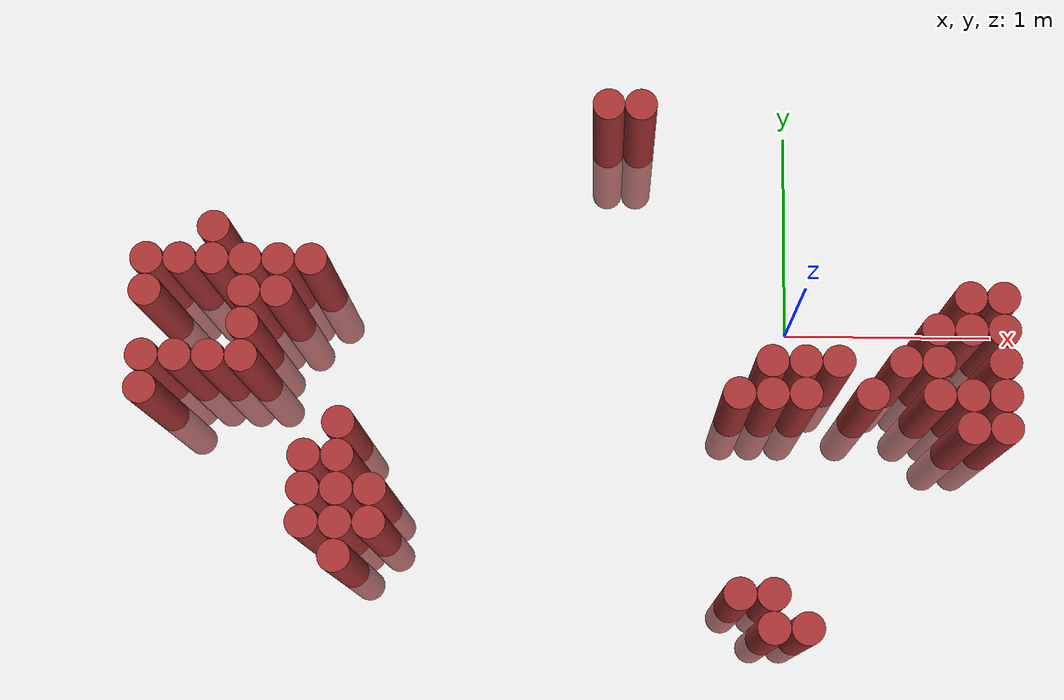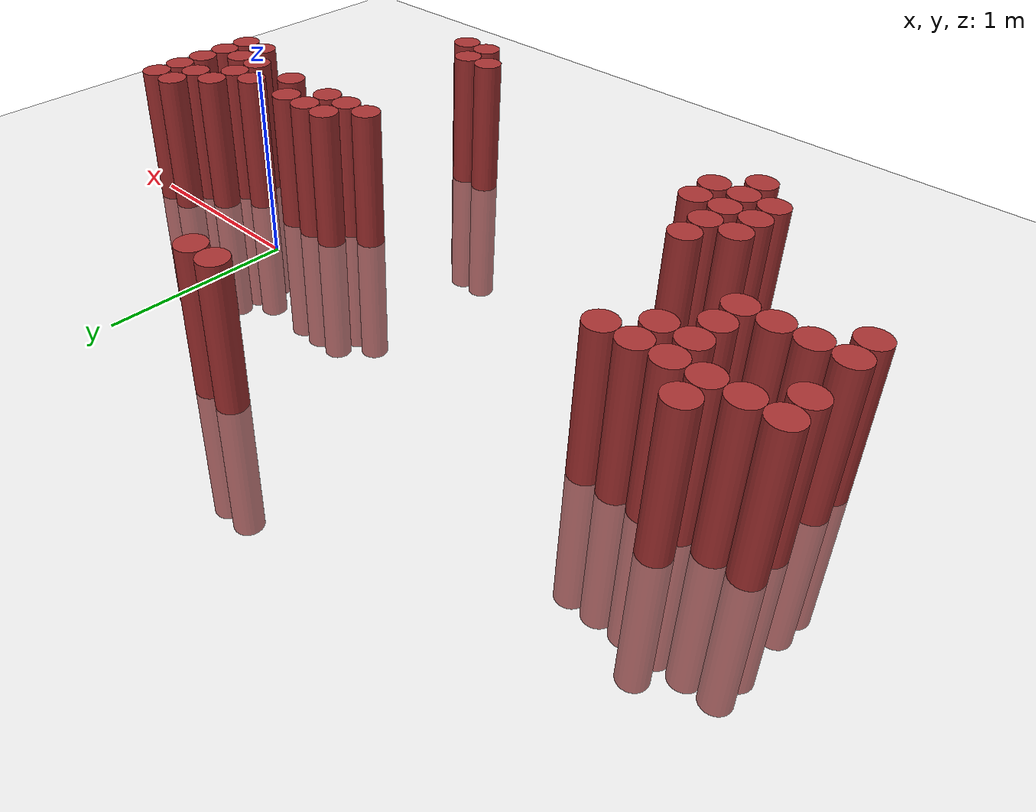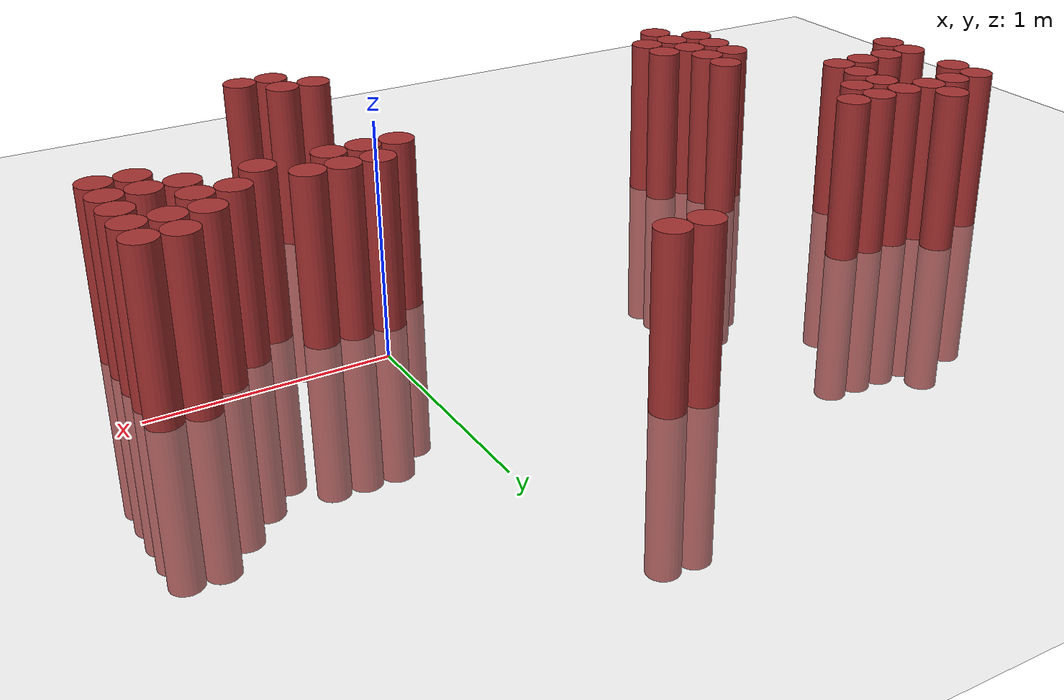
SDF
<sdf version="1.6">
 <world name="default">
  <model name="ground_plane">
   <static>1</static>
   <link name="link">
    <collision name="collision">
     <geometry><plane><normal>0 0 1</normal><size>100 100</size></plane></geometry>
     <surface><friction><ode><mu>100</mu><mu2>50</mu2></ode></friction></surface>
    </collision>
    <visual name="visual">
     <cast_shadows>0</cast_shadows>
     <geometry><plane><normal>0 0 1</normal><size>100 100</size></plane></geometry>
     <material>
      <script><uri>file://media/materials/scripts/gazebo.material</uri><name>Gazebo/Grey</name></script>
     </material>
    </visual>
   </link>
  </model>
  <model name="unit_cylinder_301">
   <static>1</static>
   <pose>-2.975000 -0.425000 0.000000 0.000000 0.000000 0.000000</pose>
   <link name="link">
    <inertial>
     <mass>1</mass>
     <inertia><ixx>0.145833</ixx><ixy>0</ixy><ixz>0</ixz><iyy>0.145833</iyy><iyz>0</iyz><izz>0.125</izz></inertia>
    </inertial>
    <collision name="collision">
     <geometry><cylinder><radius>0.075000</radius><length>1.5</length></cylinder></geometry>
    </collision>
    <visual name="visual">
     <geometry><cylinder><radius>0.075000</radius><length>1.5</length></cylinder></geometry>
     <material>
      <ambient>0.648000 0.192000 0.192000 1</ambient>
      <diffuse>0.648000 0.192000 0.192000 1</diffuse>
     </material>
     <material>
      <script><name>Gazebo/Grey</name><uri>file://media/materials/scripts/gazebo.material</uri></script>
     </material>
    </visual>
   </link>
  </model>
  <model name="unit_cylinder_302">
   <static>1</static>
   <pose>-2.975000 -0.275000 0.000000 0.000000 0.000000 0.000000</pose>
   <link name="link">
    <inertial>
     <mass>1</mass>
     <inertia><ixx>0.145833</ixx><ixy>0</ixy><ixz>0</ixz><iyy>0.145833</iyy><iyz>0</iyz><izz>0.125</izz></inertia>
    </inertial>
    <collision name="collision">
     <geometry><cylinder><radius>0.075000</radius><length>1.5</length></cylinder></geometry>
    </collision>
    <visual name="visual">
     <geometry><cylinder><radius>0.075000</radius><length>1.5</length></cylinder></geometry>
     <material>
      <ambient>0.648000 0.192000 0.192000 1</ambient>
      <diffuse>0.648000 0.192000 0.192000 1</diffuse>
     </material>
     <material>
      <script><name>Gazebo/Grey</name><uri>file://media/materials/scripts/gazebo.material</uri></script>
     </material>
    </visual>
   </link>
  </model>
  <model name="unit_cylinder_303">
   <static>1</static>
   <pose>-2.975000 0.025000 0.000000 0.000000 0.000000 0.000000</pose>
   <link name="link">
    <inertial>
     <mass>1</mass>
     <inertia><ixx>0.145833</ixx><ixy>0</ixy><ixz>0</ixz><iyy>0.145833</iyy><iyz>0</iyz><izz>0.125</izz></inertia>
    </inertial>
    <collision name="collision">
     <geometry><cylinder><radius>0.075000</radius><length>1.5</length></cylinder></geometry>
    </collision>
    <visual name="visual">
     <geometry><cylinder><radius>0.075000</radius><length>1.5</length></cylinder></geometry>
     <material>
      <ambient>0.648000 0.192000 0.192000 1</ambient>
      <diffuse>0.648000 0.192000 0.192000 1</diffuse>
     </material>
     <material>
      <script><name>Gazebo/Grey</name><uri>file://media/materials/scripts/gazebo.material</uri></script>
     </material>
    </visual>
   </link>
  </model>
  <model name="unit_cylinder_304">
   <static>1</static>
   <pose>-2.975000 0.175000 0.000000 0.000000 0.000000 0.000000</pose>
   <link name="link">
    <inertial>
     <mass>1</mass>
     <inertia><ixx>0.145833</ixx><ixy>0</ixy><ixz>0</ixz><iyy>0.145833</iyy><iyz>0</iyz><izz>0.125</izz></inertia>
    </inertial>
    <collision name="collision">
     <geometry><cylinder><radius>0.075000</radius><length>1.5</length></cylinder></geometry>
    </collision>
    <visual name="visual">
     <geometry><cylinder><radius>0.075000</radius><length>1.5</length></cylinder></geometry>
     <material>
      <ambient>0.648000 0.192000 0.192000 1</ambient>
      <diffuse>0.648000 0.192000 0.192000 1</diffuse>
     </material>
     <material>
      <script><name>Gazebo/Grey</name><uri>file://media/materials/scripts/gazebo.material</uri></script>
     </material>
    </visual>
   </link>
  </model>
  <model name="unit_cylinder_312">
   <static>1</static>
   <pose>-2.825000 -0.275000 0.000000 0.000000 0.000000 0.000000</pose>
   <link name="link">
    <inertial>
     <mass>1</mass>
     <inertia><ixx>0.145833</ixx><ixy>0</ixy><ixz>0</ixz><iyy>0.145833</iyy><iyz>0</iyz><izz>0.125</izz></inertia>
    </inertial>
    <collision name="collision">
     <geometry><cylinder><radius>0.075000</radius><length>1.5</length></cylinder></geometry>
    </collision>
    <visual name="visual">
     <geometry><cylinder><radius>0.075000</radius><length>1.5</length></cylinder></geometry>
     <material>
      <ambient>0.648000 0.192000 0.192000 1</ambient>
      <diffuse>0.648000 0.192000 0.192000 1</diffuse>
     </material>
     <material>
      <script><name>Gazebo/Grey</name><uri>file://media/materials/scripts/gazebo.material</uri></script>
     </material>
    </visual>
   </link>
  </model>
  <model name="unit_cylinder_313">
   <static>1</static>
   <pose>-2.825000 0.175000 0.000000 0.000000 0.000000 0.000000</pose>
   <link name="link">
    <inertial>
     <mass>1</mass>
     <inertia><ixx>0.145833</ixx><ixy>0</ixy><ixz>0</ixz><iyy>0.145833</iyy><iyz>0</iyz><izz>0.125</izz></inertia>
    </inertial>
    <collision name="collision">
     <geometry><cylinder><radius>0.075000</radius><length>1.5</length></cylinder></geometry>
    </collision>
    <visual name="visual">
     <geometry><cylinder><radius>0.075000</radius><length>1.5</length></cylinder></geometry>
     <material>
      <ambient>0.648000 0.192000 0.192000 1</ambient>
      <diffuse>0.648000 0.192000 0.192000 1</diffuse>
     </material>
     <material>
      <script><name>Gazebo/Grey</name><uri>file://media/materials/scripts/gazebo.material</uri></script>
     </material>
    </visual>
   </link>
  </model>
  <model name="unit_cylinder_317">
   <static>1</static>
   <pose>-2.675000 -0.275000 0.000000 0.000000 0.000000 0.000000</pose>
   <link name="link">
    <inertial>
     <mass>1</mass>
     <inertia><ixx>0.145833</ixx><ixy>0</ixy><ixz>0</ixz><iyy>0.145833</iyy><iyz>0</iyz><izz>0.125</izz></inertia>
    </inertial>
    <collision name="collision">
     <geometry><cylinder><radius>0.075000</radius><length>1.5</length></cylinder></geometry>
    </collision>
    <visual name="visual">
     <geometry><cylinder><radius>0.075000</radius><length>1.5</length></cylinder></geometry>
     <material>
      <ambient>0.648000 0.192000 0.192000 1</ambient>
      <diffuse>0.648000 0.192000 0.192000 1</diffuse>
     </material>
     <material>
      <script><name>Gazebo/Grey</name><uri>file://media/materials/scripts/gazebo.material</uri></script>
     </material>
    </visual>
   </link>
  </model>
  <model name="unit_cylinder_318">
   <static>1</static>
   <pose>-2.675000 0.175000 0.000000 0.000000 0.000000 0.000000</pose>
   <link name="link">
    <inertial>
     <mass>1</mass>
     <inertia><ixx>0.145833</ixx><ixy>0</ixy><ixz>0</ixz><iyy>0.145833</iyy><iyz>0</iyz><izz>0.125</izz></inertia>
    </inertial>
    <collision name="collision">
     <geometry><cylinder><radius>0.075000</radius><length>1.5</length></cylinder></geometry>
    </collision>
    <visual name="visual">
     <geometry><cylinder><radius>0.075000</radius><length>1.5</length></cylinder></geometry>
     <material>
      <ambient>0.648000 0.192000 0.192000 1</ambient>
      <diffuse>0.648000 0.192000 0.192000 1</diffuse>
     </material>
     <material>
      <script><name>Gazebo/Grey</name><uri>file://media/materials/scripts/gazebo.material</uri></script>
     </material>
    </visual>
   </link>
  </model>
  <model name="unit_cylinder_319">
   <static>1</static>
   <pose>-2.675000 0.325000 0.000000 0.000000 0.000000 0.000000</pose>
   <link name="link">
    <inertial>
     <mass>1</mass>
     <inertia><ixx>0.145833</ixx><ixy>0</ixy><ixz>0</ixz><iyy>0.145833</iyy><iyz>0</iyz><izz>0.125</izz></inertia>
    </inertial>
    <collision name="collision">
     <geometry><cylinder><radius>0.075000</radius><length>1.5</length></cylinder></geometry>
    </collision>
    <visual name="visual">
     <geometry><cylinder><radius>0.075000</radius><length>1.5</length></cylinder></geometry>
     <material>
      <ambient>0.648000 0.192000 0.192000 1</ambient>
      <diffuse>0.648000 0.192000 0.192000 1</diffuse>
     </material>
     <material>
      <script><name>Gazebo/Grey</name><uri>file://media/materials/scripts/gazebo.material</uri></script>
     </material>
    </visual>
   </link>
  </model>
  <model name="unit_cylinder_322">
   <static>1</static>
   <pose>-2.525000 -0.275000 0.000000 0.000000 0.000000 0.000000</pose>
   <link name="link">
    <inertial>
     <mass>1</mass>
     <inertia><ixx>0.145833</ixx><ixy>0</ixy><ixz>0</ixz><iyy>0.145833</iyy><iyz>0</iyz><izz>0.125</izz></inertia>
    </inertial>
    <collision name="collision">
     <geometry><cylinder><radius>0.075000</radius><length>1.5</length></cylinder></geometry>
    </collision>
    <visual name="visual">
     <geometry><cylinder><radius>0.075000</radius><length>1.5</length></cylinder></geometry>
     <material>
      <ambient>0.648000 0.192000 0.192000 1</ambient>
      <diffuse>0.648000 0.192000 0.192000 1</diffuse>
     </material>
     <material>
      <script><name>Gazebo/Grey</name><uri>file://media/materials/scripts/gazebo.material</uri></script>
     </material>
    </visual>
   </link>
  </model>
  <model name="unit_cylinder_323">
   <static>1</static>
   <pose>-2.525000 -0.125000 0.000000 0.000000 0.000000 0.000000</pose>
   <link name="link">
    <inertial>
     <mass>1</mass>
     <inertia><ixx>0.145833</ixx><ixy>0</ixy><ixz>0</ixz><iyy>0.145833</iyy><iyz>0</iyz><izz>0.125</izz></inertia>
    </inertial>
    <collision name="collision">
     <geometry><cylinder><radius>0.075000</radius><length>1.5</length></cylinder></geometry>
    </collision>
    <visual name="visual">
     <geometry><cylinder><radius>0.075000</radius><length>1.5</length></cylinder></geometry>
     <material>
      <ambient>0.648000 0.192000 0.192000 1</ambient>
      <diffuse>0.648000 0.192000 0.192000 1</diffuse>
     </material>
     <material>
      <script><name>Gazebo/Grey</name><uri>file://media/materials/scripts/gazebo.material</uri></script>
     </material>
    </visual>
   </link>
  </model>
  <model name="unit_cylinder_324">
   <static>1</static>
   <pose>-2.525000 0.025000 0.000000 0.000000 0.000000 0.000000</pose>
   <link name="link">
    <inertial>
     <mass>1</mass>
     <inertia><ixx>0.145833</ixx><ixy>0</ixy><ixz>0</ixz><iyy>0.145833</iyy><iyz>0</iyz><izz>0.125</izz></inertia>
    </inertial>
    <collision name="collision">
     <geometry><cylinder><radius>0.075000</radius><length>1.5</length></cylinder></geometry>
    </collision>
    <visual name="visual">
     <geometry><cylinder><radius>0.075000</radius><length>1.5</length></cylinder></geometry>
     <material>
      <ambient>0.648000 0.192000 0.192000 1</ambient>
      <diffuse>0.648000 0.192000 0.192000 1</diffuse>
     </material>
     <material>
      <script><name>Gazebo/Grey</name><uri>file://media/materials/scripts/gazebo.material</uri></script>
     </material>
    </visual>
   </link>
  </model>
  <model name="unit_cylinder_325">
   <static>1</static>
   <pose>-2.525000 0.175000 0.000000 0.000000 0.000000 0.000000</pose>
   <link name="link">
    <inertial>
     <mass>1</mass>
     <inertia><ixx>0.145833</ixx><ixy>0</ixy><ixz>0</ixz><iyy>0.145833</iyy><iyz>0</iyz><izz>0.125</izz></inertia>
    </inertial>
    <collision name="collision">
     <geometry><cylinder><radius>0.075000</radius><length>1.5</length></cylinder></geometry>
    </collision>
    <visual name="visual">
     <geometry><cylinder><radius>0.075000</radius><length>1.5</length></cylinder></geometry>
     <material>
      <ambient>0.648000 0.192000 0.192000 1</ambient>
      <diffuse>0.648000 0.192000 0.192000 1</diffuse>
     </material>
     <material>
      <script><name>Gazebo/Grey</name><uri>file://media/materials/scripts/gazebo.material</uri></script>
     </material>
    </visual>
   </link>
  </model>
  <model name="unit_cylinder_332">
   <static>1</static>
   <pose>-2.375000 0.025000 0.000000 0.000000 0.000000 0.000000</pose>
   <link name="link">
    <inertial>
     <mass>1</mass>
     <inertia><ixx>0.145833</ixx><ixy>0</ixy><ixz>0</ixz><iyy>0.145833</iyy><iyz>0</iyz><izz>0.125</izz></inertia>
    </inertial>
    <collision name="collision">
     <geometry><cylinder><radius>0.075000</radius><length>1.5</length></cylinder></geometry>
    </collision>
    <visual name="visual">
     <geometry><cylinder><radius>0.075000</radius><length>1.5</length></cylinder></geometry>
     <material>
      <ambient>0.648000 0.192000 0.192000 1</ambient>
      <diffuse>0.648000 0.192000 0.192000 1</diffuse>
     </material>
     <material>
      <script><name>Gazebo/Grey</name><uri>file://media/materials/scripts/gazebo.material</uri></script>
     </material>
    </visual>
   </link>
  </model>
  <model name="unit_cylinder_333">
   <static>1</static>
   <pose>-2.375000 0.175000 0.000000 0.000000 0.000000 0.000000</pose>
   <link name="link">
    <inertial>
     <mass>1</mass>
     <inertia><ixx>0.145833</ixx><ixy>0</ixy><ixz>0</ixz><iyy>0.145833</iyy><iyz>0</iyz><izz>0.125</izz></inertia>
    </inertial>
    <collision name="collision">
     <geometry><cylinder><radius>0.075000</radius><length>1.5</length></cylinder></geometry>
    </collision>
    <visual name="visual">
     <geometry><cylinder><radius>0.075000</radius><length>1.5</length></cylinder></geometry>
     <material>
      <ambient>0.648000 0.192000 0.192000 1</ambient>
      <diffuse>0.648000 0.192000 0.192000 1</diffuse>
     </material>
     <material>
      <script><name>Gazebo/Grey</name><uri>file://media/materials/scripts/gazebo.material</uri></script>
     </material>
    </visual>
   </link>
  </model>
  <model name="unit_cylinder_340">
   <static>1</static>
   <pose>-2.225000 -1.025000 0.000000 0.000000 0.000000 0.000000</pose>
   <link name="link">
    <inertial>
     <mass>1</mass>
     <inertia><ixx>0.145833</ixx><ixy>0</ixy><ixz>0</ixz><iyy>0.145833</iyy><iyz>0</iyz><izz>0.125</izz></inertia>
    </inertial>
    <collision name="collision">
     <geometry><cylinder><radius>0.075000</radius><length>1.5</length></cylinder></geometry>
    </collision>
    <visual name="visual">
     <geometry><cylinder><radius>0.075000</radius><length>1.5</length></cylinder></geometry>
     <material>
      <ambient>0.648000 0.192000 0.192000 1</ambient>
      <diffuse>0.648000 0.192000 0.192000 1</diffuse>
     </material>
     <material>
      <script><name>Gazebo/Grey</name><uri>file://media/materials/scripts/gazebo.material</uri></script>
     </material>
    </visual>
   </link>
  </model>
  <model name="unit_cylinder_341">
   <static>1</static>
   <pose>-2.225000 -0.875000 0.000000 0.000000 0.000000 0.000000</pose>
   <link name="link">
    <inertial>
     <mass>1</mass>
     <inertia><ixx>0.145833</ixx><ixy>0</ixy><ixz>0</ixz><iyy>0.145833</iyy><iyz>0</iyz><izz>0.125</izz></inertia>
    </inertial>
    <collision name="collision">
     <geometry><cylinder><radius>0.075000</radius><length>1.5</length></cylinder></geometry>
    </collision>
    <visual name="visual">
     <geometry><cylinder><radius>0.075000</radius><length>1.5</length></cylinder></geometry>
     <material>
      <ambient>0.648000 0.192000 0.192000 1</ambient>
      <diffuse>0.648000 0.192000 0.192000 1</diffuse>
     </material>
     <material>
      <script><name>Gazebo/Grey</name><uri>file://media/materials/scripts/gazebo.material</uri></script>
     </material>
    </visual>
   </link>
  </model>
  <model name="unit_cylinder_342">
   <static>1</static>
   <pose>-2.225000 -0.725000 0.000000 0.000000 0.000000 0.000000</pose>
   <link name="link">
    <inertial>
     <mass>1</mass>
     <inertia><ixx>0.145833</ixx><ixy>0</ixy><ixz>0</ixz><iyy>0.145833</iyy><iyz>0</iyz><izz>0.125</izz></inertia>
    </inertial>
    <collision name="collision">
     <geometry><cylinder><radius>0.075000</radius><length>1.5</length></cylinder></geometry>
    </collision>
    <visual name="visual">
     <geometry><cylinder><radius>0.075000</radius><length>1.5</length></cylinder></geometry>
     <material>
      <ambient>0.648000 0.192000 0.192000 1</ambient>
      <diffuse>0.648000 0.192000 0.192000 1</diffuse>
     </material>
     <material>
      <script><name>Gazebo/Grey</name><uri>file://media/materials/scripts/gazebo.material</uri></script>
     </material>
    </visual>
   </link>
  </model>
  <model name="unit_cylinder_343">
   <static>1</static>
   <pose>-2.225000 0.175000 0.000000 0.000000 0.000000 0.000000</pose>
   <link name="link">
    <inertial>
     <mass>1</mass>
     <inertia><ixx>0.145833</ixx><ixy>0</ixy><ixz>0</ixz><iyy>0.145833</iyy><iyz>0</iyz><izz>0.125</izz></inertia>
    </inertial>
    <collision name="collision">
     <geometry><cylinder><radius>0.075000</radius><length>1.5</length></cylinder></geometry>
    </collision>
    <visual name="visual">
     <geometry><cylinder><radius>0.075000</radius><length>1.5</length></cylinder></geometry>
     <material>
      <ambient>0.648000 0.192000 0.192000 1</ambient>
      <diffuse>0.648000 0.192000 0.192000 1</diffuse>
     </material>
     <material>
      <script><name>Gazebo/Grey</name><uri>file://media/materials/scripts/gazebo.material</uri></script>
     </material>
    </visual>
   </link>
  </model>
  <model name="unit_cylinder_347">
   <static>1</static>
   <pose>-2.075000 -1.175000 0.000000 0.000000 0.000000 0.000000</pose>
   <link name="link">
    <inertial>
     <mass>1</mass>
     <inertia><ixx>0.145833</ixx><ixy>0</ixy><ixz>0</ixz><iyy>0.145833</iyy><iyz>0</iyz><izz>0.125</izz></inertia>
    </inertial>
    <collision name="collision">
     <geometry><cylinder><radius>0.075000</radius><length>1.5</length></cylinder></geometry>
    </collision>
    <visual name="visual">
     <geometry><cylinder><radius>0.075000</radius><length>1.5</length></cylinder></geometry>
     <material>
      <ambient>0.648000 0.192000 0.192000 1</ambient>
      <diffuse>0.648000 0.192000 0.192000 1</diffuse>
     </material>
     <material>
      <script><name>Gazebo/Grey</name><uri>file://media/materials/scripts/gazebo.material</uri></script>
     </material>
    </visual>
   </link>
  </model>
  <model name="unit_cylinder_348">
   <static>1</static>
   <pose>-2.075000 -1.025000 0.000000 0.000000 0.000000 0.000000</pose>
   <link name="link">
    <inertial>
     <mass>1</mass>
     <inertia><ixx>0.145833</ixx><ixy>0</ixy><ixz>0</ixz><iyy>0.145833</iyy><iyz>0</iyz><izz>0.125</izz></inertia>
    </inertial>
    <collision name="collision">
     <geometry><cylinder><radius>0.075000</radius><length>1.5</length></cylinder></geometry>
    </collision>
    <visual name="visual">
     <geometry><cylinder><radius>0.075000</radius><length>1.5</length></cylinder></geometry>
     <material>
      <ambient>0.648000 0.192000 0.192000 1</ambient>
      <diffuse>0.648000 0.192000 0.192000 1</diffuse>
     </material>
     <material>
      <script><name>Gazebo/Grey</name><uri>file://media/materials/scripts/gazebo.material</uri></script>
     </material>
    </visual>
   </link>
  </model>
  <model name="unit_cylinder_349">
   <static>1</static>
   <pose>-2.075000 -0.875000 0.000000 0.000000 0.000000 0.000000</pose>
   <link name="link">
    <inertial>
     <mass>1</mass>
     <inertia><ixx>0.145833</ixx><ixy>0</ixy><ixz>0</ixz><iyy>0.145833</iyy><iyz>0</iyz><izz>0.125</izz></inertia>
    </inertial>
    <collision name="collision">
     <geometry><cylinder><radius>0.075000</radius><length>1.5</length></cylinder></geometry>
    </collision>
    <visual name="visual">
     <geometry><cylinder><radius>0.075000</radius><length>1.5</length></cylinder></geometry>
     <material>
      <ambient>0.648000 0.192000 0.192000 1</ambient>
      <diffuse>0.648000 0.192000 0.192000 1</diffuse>
     </material>
     <material>
      <script><name>Gazebo/Grey</name><uri>file://media/materials/scripts/gazebo.material</uri></script>
     </material>
    </visual>
   </link>
  </model>
  <model name="unit_cylinder_350">
   <static>1</static>
   <pose>-2.075000 -0.725000 0.000000 0.000000 0.000000 0.000000</pose>
   <link name="link">
    <inertial>
     <mass>1</mass>
     <inertia><ixx>0.145833</ixx><ixy>0</ixy><ixz>0</ixz><iyy>0.145833</iyy><iyz>0</iyz><izz>0.125</izz></inertia>
    </inertial>
    <collision name="collision">
     <geometry><cylinder><radius>0.075000</radius><length>1.5</length></cylinder></geometry>
    </collision>
    <visual name="visual">
     <geometry><cylinder><radius>0.075000</radius><length>1.5</length></cylinder></geometry>
     <material>
      <ambient>0.648000 0.192000 0.192000 1</ambient>
      <diffuse>0.648000 0.192000 0.192000 1</diffuse>
     </material>
     <material>
      <script><name>Gazebo/Grey</name><uri>file://media/materials/scripts/gazebo.material</uri></script>
     </material>
    </visual>
   </link>
  </model>
  <model name="unit_cylinder_351">
   <static>1</static>
   <pose>-2.075000 -0.575000 0.000000 0.000000 0.000000 0.000000</pose>
   <link name="link">
    <inertial>
     <mass>1</mass>
     <inertia><ixx>0.145833</ixx><ixy>0</ixy><ixz>0</ixz><iyy>0.145833</iyy><iyz>0</iyz><izz>0.125</izz></inertia>
    </inertial>
    <collision name="collision">
     <geometry><cylinder><radius>0.075000</radius><length>1.5</length></cylinder></geometry>
    </collision>
    <visual name="visual">
     <geometry><cylinder><radius>0.075000</radius><length>1.5</length></cylinder></geometry>
     <material>
      <ambient>0.648000 0.192000 0.192000 1</ambient>
      <diffuse>0.648000 0.192000 0.192000 1</diffuse>
     </material>
     <material>
      <script><name>Gazebo/Grey</name><uri>file://media/materials/scripts/gazebo.material</uri></script>
     </material>
    </visual>
   </link>
  </model>
  <model name="unit_cylinder_355">
   <static>1</static>
   <pose>-1.925000 -1.025000 0.000000 0.000000 0.000000 0.000000</pose>
   <link name="link">
    <inertial>
     <mass>1</mass>
     <inertia><ixx>0.145833</ixx><ixy>0</ixy><ixz>0</ixz><iyy>0.145833</iyy><iyz>0</iyz><izz>0.125</izz></inertia>
    </inertial>
    <collision name="collision">
     <geometry><cylinder><radius>0.075000</radius><length>1.5</length></cylinder></geometry>
    </collision>
    <visual name="visual">
     <geometry><cylinder><radius>0.075000</radius><length>1.5</length></cylinder></geometry>
     <material>
      <ambient>0.648000 0.192000 0.192000 1</ambient>
      <diffuse>0.648000 0.192000 0.192000 1</diffuse>
     </material>
     <material>
      <script><name>Gazebo/Grey</name><uri>file://media/materials/scripts/gazebo.material</uri></script>
     </material>
    </visual>
   </link>
  </model>
  <model name="unit_cylinder_356">
   <static>1</static>
   <pose>-1.925000 -0.875000 0.000000 0.000000 0.000000 0.000000</pose>
   <link name="link">
    <inertial>
     <mass>1</mass>
     <inertia><ixx>0.145833</ixx><ixy>0</ixy><ixz>0</ixz><iyy>0.145833</iyy><iyz>0</iyz><izz>0.125</izz></inertia>
    </inertial>
    <collision name="collision">
     <geometry><cylinder><radius>0.075000</radius><length>1.5</length></cylinder></geometry>
    </collision>
    <visual name="visual">
     <geometry><cylinder><radius>0.075000</radius><length>1.5</length></cylinder></geometry>
     <material>
      <ambient>0.648000 0.192000 0.192000 1</ambient>
      <diffuse>0.648000 0.192000 0.192000 1</diffuse>
     </material>
     <material>
      <script><name>Gazebo/Grey</name><uri>file://media/materials/scripts/gazebo.material</uri></script>
     </material>
    </visual>
   </link>
  </model>
  <model name="unit_cylinder_377">
   <static>1</static>
   <pose>-0.875000 0.925000 0.000000 0.000000 0.000000 0.000000</pose>
   <link name="link">
    <inertial>
     <mass>1</mass>
     <inertia><ixx>0.145833</ixx><ixy>0</ixy><ixz>0</ixz><iyy>0.145833</iyy><iyz>0</iyz><izz>0.125</izz></inertia>
    </inertial>
    <collision name="collision">
     <geometry><cylinder><radius>0.075000</radius><length>1.5</length></cylinder></geometry>
    </collision>
    <visual name="visual">
     <geometry><cylinder><radius>0.075000</radius><length>1.5</length></cylinder></geometry>
     <material>
      <ambient>0.648000 0.192000 0.192000 1</ambient>
      <diffuse>0.648000 0.192000 0.192000 1</diffuse>
     </material>
     <material>
      <script><name>Gazebo/Grey</name><uri>file://media/materials/scripts/gazebo.material</uri></script>
     </material>
    </visual>
   </link>
  </model>
  <model name="unit_cylinder_380">
   <static>1</static>
   <pose>-0.725000 0.925000 0.000000 0.000000 0.000000 0.000000</pose>
   <link name="link">
    <inertial>
     <mass>1</mass>
     <inertia><ixx>0.145833</ixx><ixy>0</ixy><ixz>0</ixz><iyy>0.145833</iyy><iyz>0</iyz><izz>0.125</izz></inertia>
    </inertial>
    <collision name="collision">
     <geometry><cylinder><radius>0.075000</radius><length>1.5</length></cylinder></geometry>
    </collision>
    <visual name="visual">
     <geometry><cylinder><radius>0.075000</radius><length>1.5</length></cylinder></geometry>
     <material>
      <ambient>0.648000 0.192000 0.192000 1</ambient>
      <diffuse>0.648000 0.192000 0.192000 1</diffuse>
     </material>
     <material>
      <script><name>Gazebo/Grey</name><uri>file://media/materials/scripts/gazebo.material</uri></script>
     </material>
    </visual>
   </link>
  </model>
  <model name="unit_cylinder_388">
   <static>1</static>
   <pose>-0.275000 -1.325000 0.000000 0.000000 0.000000 0.000000</pose>
   <link name="link">
    <inertial>
     <mass>1</mass>
     <inertia><ixx>0.145833</ixx><ixy>0</ixy><ixz>0</ixz><iyy>0.145833</iyy><iyz>0</iyz><izz>0.125</izz></inertia>
    </inertial>
    <collision name="collision">
     <geometry><cylinder><radius>0.075000</radius><length>1.5</length></cylinder></geometry>
    </collision>
    <visual name="visual">
     <geometry><cylinder><radius>0.075000</radius><length>1.5</length></cylinder></geometry>
     <material>
      <ambient>0.648000 0.192000 0.192000 1</ambient>
      <diffuse>0.648000 0.192000 0.192000 1</diffuse>
     </material>
     <material>
      <script><name>Gazebo/Grey</name><uri>file://media/materials/scripts/gazebo.material</uri></script>
     </material>
    </visual>
   </link>
  </model>
  <model name="unit_cylinder_389">
   <static>1</static>
   <pose>-0.275000 -0.425000 0.000000 0.000000 0.000000 0.000000</pose>
   <link name="link">
    <inertial>
     <mass>1</mass>
     <inertia><ixx>0.145833</ixx><ixy>0</ixy><ixz>0</ixz><iyy>0.145833</iyy><iyz>0</iyz><izz>0.125</izz></inertia>
    </inertial>
    <collision name="collision">
     <geometry><cylinder><radius>0.075000</radius><length>1.5</length></cylinder></geometry>
    </collision>
    <visual name="visual">
     <geometry><cylinder><radius>0.075000</radius><length>1.5</length></cylinder></geometry>
     <material>
      <ambient>0.648000 0.192000 0.192000 1</ambient>
      <diffuse>0.648000 0.192000 0.192000 1</diffuse>
     </material>
     <material>
      <script><name>Gazebo/Grey</name><uri>file://media/materials/scripts/gazebo.material</uri></script>
     </material>
    </visual>
   </link>
  </model>
  <model name="unit_cylinder_392">
   <static>1</static>
   <pose>-0.125000 -1.475000 0.000000 0.000000 0.000000 0.000000</pose>
   <link name="link">
    <inertial>
     <mass>1</mass>
     <inertia><ixx>0.145833</ixx><ixy>0</ixy><ixz>0</ixz><iyy>0.145833</iyy><iyz>0</iyz><izz>0.125</izz></inertia>
    </inertial>
    <collision name="collision">
     <geometry><cylinder><radius>0.075000</radius><length>1.5</length></cylinder></geometry>
    </collision>
    <visual name="visual">
     <geometry><cylinder><radius>0.075000</radius><length>1.5</length></cylinder></geometry>
     <material>
      <ambient>0.648000 0.192000 0.192000 1</ambient>
      <diffuse>0.648000 0.192000 0.192000 1</diffuse>
     </material>
     <material>
      <script><name>Gazebo/Grey</name><uri>file://media/materials/scripts/gazebo.material</uri></script>
     </material>
    </visual>
   </link>
  </model>
  <model name="unit_cylinder_393">
   <static>1</static>
   <pose>-0.125000 -1.325000 0.000000 0.000000 0.000000 0.000000</pose>
   <link name="link">
    <inertial>
     <mass>1</mass>
     <inertia><ixx>0.145833</ixx><ixy>0</ixy><ixz>0</ixz><iyy>0.145833</iyy><iyz>0</iyz><izz>0.125</izz></inertia>
    </inertial>
    <collision name="collision">
     <geometry><cylinder><radius>0.075000</radius><length>1.5</length></cylinder></geometry>
    </collision>
    <visual name="visual">
     <geometry><cylinder><radius>0.075000</radius><length>1.5</length></cylinder></geometry>
     <material>
      <ambient>0.648000 0.192000 0.192000 1</ambient>
      <diffuse>0.648000 0.192000 0.192000 1</diffuse>
     </material>
     <material>
      <script><name>Gazebo/Grey</name><uri>file://media/materials/scripts/gazebo.material</uri></script>
     </material>
    </visual>
   </link>
  </model>
  <model name="unit_cylinder_394">
   <static>1</static>
   <pose>-0.125000 -0.425000 0.000000 0.000000 0.000000 0.000000</pose>
   <link name="link">
    <inertial>
     <mass>1</mass>
     <inertia><ixx>0.145833</ixx><ixy>0</ixy><ixz>0</ixz><iyy>0.145833</iyy><iyz>0</iyz><izz>0.125</izz></inertia>
    </inertial>
    <collision name="collision">
     <geometry><cylinder><radius>0.075000</radius><length>1.5</length></cylinder></geometry>
    </collision>
    <visual name="visual">
     <geometry><cylinder><radius>0.075000</radius><length>1.5</length></cylinder></geometry>
     <material>
      <ambient>0.648000 0.192000 0.192000 1</ambient>
      <diffuse>0.648000 0.192000 0.192000 1</diffuse>
     </material>
     <material>
      <script><name>Gazebo/Grey</name><uri>file://media/materials/scripts/gazebo.material</uri></script>
     </material>
    </visual>
   </link>
  </model>
  <model name="unit_cylinder_395">
   <static>1</static>
   <pose>-0.125000 -0.275000 0.000000 0.000000 0.000000 0.000000</pose>
   <link name="link">
    <inertial>
     <mass>1</mass>
     <inertia><ixx>0.145833</ixx><ixy>0</ixy><ixz>0</ixz><iyy>0.145833</iyy><iyz>0</iyz><izz>0.125</izz></inertia>
    </inertial>
    <collision name="collision">
     <geometry><cylinder><radius>0.075000</radius><length>1.5</length></cylinder></geometry>
    </collision>
    <visual name="visual">
     <geometry><cylinder><radius>0.075000</radius><length>1.5</length></cylinder></geometry>
     <material>
      <ambient>0.648000 0.192000 0.192000 1</ambient>
      <diffuse>0.648000 0.192000 0.192000 1</diffuse>
     </material>
     <material>
      <script><name>Gazebo/Grey</name><uri>file://media/materials/scripts/gazebo.material</uri></script>
     </material>
    </visual>
   </link>
  </model>
  <model name="unit_cylinder_398">
   <static>1</static>
   <pose>0.025000 -1.475000 0.000000 0.000000 0.000000 0.000000</pose>
   <link name="link">
    <inertial>
     <mass>1</mass>
     <inertia><ixx>0.145833</ixx><ixy>0</ixy><ixz>0</ixz><iyy>0.145833</iyy><iyz>0</iyz><izz>0.125</izz></inertia>
    </inertial>
    <collision name="collision">
     <geometry><cylinder><radius>0.075000</radius><length>1.5</length></cylinder></geometry>
    </collision>
    <visual name="visual">
     <geometry><cylinder><radius>0.075000</radius><length>1.5</length></cylinder></geometry>
     <material>
      <ambient>0.648000 0.192000 0.192000 1</ambient>
      <diffuse>0.648000 0.192000 0.192000 1</diffuse>
     </material>
     <material>
      <script><name>Gazebo/Grey</name><uri>file://media/materials/scripts/gazebo.material</uri></script>
     </material>
    </visual>
   </link>
  </model>
  <model name="unit_cylinder_399">
   <static>1</static>
   <pose>0.025000 -0.425000 0.000000 0.000000 0.000000 0.000000</pose>
   <link name="link">
    <inertial>
     <mass>1</mass>
     <inertia><ixx>0.145833</ixx><ixy>0</ixy><ixz>0</ixz><iyy>0.145833</iyy><iyz>0</iyz><izz>0.125</izz></inertia>
    </inertial>
    <collision name="collision">
     <geometry><cylinder><radius>0.075000</radius><length>1.5</length></cylinder></geometry>
    </collision>
    <visual name="visual">
     <geometry><cylinder><radius>0.075000</radius><length>1.5</length></cylinder></geometry>
     <material>
      <ambient>0.648000 0.192000 0.192000 1</ambient>
      <diffuse>0.648000 0.192000 0.192000 1</diffuse>
     </material>
     <material>
      <script><name>Gazebo/Grey</name><uri>file://media/materials/scripts/gazebo.material</uri></script>
     </material>
    </visual>
   </link>
  </model>
  <model name="unit_cylinder_400">
   <static>1</static>
   <pose>0.025000 -0.275000 0.000000 0.000000 0.000000 0.000000</pose>
   <link name="link">
    <inertial>
     <mass>1</mass>
     <inertia><ixx>0.145833</ixx><ixy>0</ixy><ixz>0</ixz><iyy>0.145833</iyy><iyz>0</iyz><izz>0.125</izz></inertia>
    </inertial>
    <collision name="collision">
     <geometry><cylinder><radius>0.075000</radius><length>1.5</length></cylinder></geometry>
    </collision>
    <visual name="visual">
     <geometry><cylinder><radius>0.075000</radius><length>1.5</length></cylinder></geometry>
     <material>
      <ambient>0.648000 0.192000 0.192000 1</ambient>
      <diffuse>0.648000 0.192000 0.192000 1</diffuse>
     </material>
     <material>
      <script><name>Gazebo/Grey</name><uri>file://media/materials/scripts/gazebo.material</uri></script>
     </material>
    </visual>
   </link>
  </model>
  <model name="unit_cylinder_401">
   <static>1</static>
   <pose>0.175000 -0.275000 0.000000 0.000000 0.000000 0.000000</pose>
   <link name="link">
    <inertial>
     <mass>1</mass>
     <inertia><ixx>0.145833</ixx><ixy>0</ixy><ixz>0</ixz><iyy>0.145833</iyy><iyz>0</iyz><izz>0.125</izz></inertia>
    </inertial>
    <collision name="collision">
     <geometry><cylinder><radius>0.075000</radius><length>1.5</length></cylinder></geometry>
    </collision>
    <visual name="visual">
     <geometry><cylinder><radius>0.075000</radius><length>1.5</length></cylinder></geometry>
     <material>
      <ambient>0.648000 0.192000 0.192000 1</ambient>
      <diffuse>0.648000 0.192000 0.192000 1</diffuse>
     </material>
     <material>
      <script><name>Gazebo/Grey</name><uri>file://media/materials/scripts/gazebo.material</uri></script>
     </material>
    </visual>
   </link>
  </model>
  <model name="unit_cylinder_404">
   <static>1</static>
   <pose>0.325000 -0.425000 0.000000 0.000000 0.000000 0.000000</pose>
   <link name="link">
    <inertial>
     <mass>1</mass>
     <inertia><ixx>0.145833</ixx><ixy>0</ixy><ixz>0</ixz><iyy>0.145833</iyy><iyz>0</iyz><izz>0.125</izz></inertia>
    </inertial>
    <collision name="collision">
     <geometry><cylinder><radius>0.075000</radius><length>1.5</length></cylinder></geometry>
    </collision>
    <visual name="visual">
     <geometry><cylinder><radius>0.075000</radius><length>1.5</length></cylinder></geometry>
     <material>
      <ambient>0.648000 0.192000 0.192000 1</ambient>
      <diffuse>0.648000 0.192000 0.192000 1</diffuse>
     </material>
     <material>
      <script><name>Gazebo/Grey</name><uri>file://media/materials/scripts/gazebo.material</uri></script>
     </material>
    </visual>
   </link>
  </model>
  <model name="unit_cylinder_409">
   <static>1</static>
   <pose>0.475000 -0.275000 0.000000 0.000000 0.000000 0.000000</pose>
   <link name="link">
    <inertial>
     <mass>1</mass>
     <inertia><ixx>0.145833</ixx><ixy>0</ixy><ixz>0</ixz><iyy>0.145833</iyy><iyz>0</iyz><izz>0.125</izz></inertia>
    </inertial>
    <collision name="collision">
     <geometry><cylinder><radius>0.075000</radius><length>1.5</length></cylinder></geometry>
    </collision>
    <visual name="visual">
     <geometry><cylinder><radius>0.075000</radius><length>1.5</length></cylinder></geometry>
     <material>
      <ambient>0.648000 0.192000 0.192000 1</ambient>
      <diffuse>0.648000 0.192000 0.192000 1</diffuse>
     </material>
     <material>
      <script><name>Gazebo/Grey</name><uri>file://media/materials/scripts/gazebo.material</uri></script>
     </material>
    </visual>
   </link>
  </model>
  <model name="unit_cylinder_414">
   <static>1</static>
   <pose>0.625000 -0.425000 0.000000 0.000000 0.000000 0.000000</pose>
   <link name="link">
    <inertial>
     <mass>1</mass>
     <inertia><ixx>0.145833</ixx><ixy>0</ixy><ixz>0</ixz><iyy>0.145833</iyy><iyz>0</iyz><izz>0.125</izz></inertia>
    </inertial>
    <collision name="collision">
     <geometry><cylinder><radius>0.075000</radius><length>1.5</length></cylinder></geometry>
    </collision>
    <visual name="visual">
     <geometry><cylinder><radius>0.075000</radius><length>1.5</length></cylinder></geometry>
     <material>
      <ambient>0.648000 0.192000 0.192000 1</ambient>
      <diffuse>0.648000 0.192000 0.192000 1</diffuse>
     </material>
     <material>
      <script><name>Gazebo/Grey</name><uri>file://media/materials/scripts/gazebo.material</uri></script>
     </material>
    </visual>
   </link>
  </model>
  <model name="unit_cylinder_415">
   <static>1</static>
   <pose>0.625000 -0.275000 0.000000 0.000000 0.000000 0.000000</pose>
   <link name="link">
    <inertial>
     <mass>1</mass>
     <inertia><ixx>0.145833</ixx><ixy>0</ixy><ixz>0</ixz><iyy>0.145833</iyy><iyz>0</iyz><izz>0.125</izz></inertia>
    </inertial>
    <collision name="collision">
     <geometry><cylinder><radius>0.075000</radius><length>1.5</length></cylinder></geometry>
    </collision>
    <visual name="visual">
     <geometry><cylinder><radius>0.075000</radius><length>1.5</length></cylinder></geometry>
     <material>
      <ambient>0.648000 0.192000 0.192000 1</ambient>
      <diffuse>0.648000 0.192000 0.192000 1</diffuse>
     </material>
     <material>
      <script><name>Gazebo/Grey</name><uri>file://media/materials/scripts/gazebo.material</uri></script>
     </material>
    </visual>
   </link>
  </model>
  <model name="unit_cylinder_416">
   <static>1</static>
   <pose>0.625000 -0.125000 0.000000 0.000000 0.000000 0.000000</pose>
   <link name="link">
    <inertial>
     <mass>1</mass>
     <inertia><ixx>0.145833</ixx><ixy>0</ixy><ixz>0</ixz><iyy>0.145833</iyy><iyz>0</iyz><izz>0.125</izz></inertia>
    </inertial>
    <collision name="collision">
     <geometry><cylinder><radius>0.075000</radius><length>1.5</length></cylinder></geometry>
    </collision>
    <visual name="visual">
     <geometry><cylinder><radius>0.075000</radius><length>1.5</length></cylinder></geometry>
     <material>
      <ambient>0.648000 0.192000 0.192000 1</ambient>
      <diffuse>0.648000 0.192000 0.192000 1</diffuse>
     </material>
     <material>
      <script><name>Gazebo/Grey</name><uri>file://media/materials/scripts/gazebo.material</uri></script>
     </material>
    </visual>
   </link>
  </model>
  <model name="unit_cylinder_421">
   <static>1</static>
   <pose>0.775000 -0.575000 0.000000 0.000000 0.000000 0.000000</pose>
   <link name="link">
    <inertial>
     <mass>1</mass>
     <inertia><ixx>0.145833</ixx><ixy>0</ixy><ixz>0</ixz><iyy>0.145833</iyy><iyz>0</iyz><izz>0.125</izz></inertia>
    </inertial>
    <collision name="collision">
     <geometry><cylinder><radius>0.075000</radius><length>1.5</length></cylinder></geometry>
    </collision>
    <visual name="visual">
     <geometry><cylinder><radius>0.075000</radius><length>1.5</length></cylinder></geometry>
     <material>
      <ambient>0.648000 0.192000 0.192000 1</ambient>
      <diffuse>0.648000 0.192000 0.192000 1</diffuse>
     </material>
     <material>
      <script><name>Gazebo/Grey</name><uri>file://media/materials/scripts/gazebo.material</uri></script>
     </material>
    </visual>
   </link>
  </model>
  <model name="unit_cylinder_422">
   <static>1</static>
   <pose>0.775000 -0.425000 0.000000 0.000000 0.000000 0.000000</pose>
   <link name="link">
    <inertial>
     <mass>1</mass>
     <inertia><ixx>0.145833</ixx><ixy>0</ixy><ixz>0</ixz><iyy>0.145833</iyy><iyz>0</iyz><izz>0.125</izz></inertia>
    </inertial>
    <collision name="collision">
     <geometry><cylinder><radius>0.075000</radius><length>1.5</length></cylinder></geometry>
    </collision>
    <visual name="visual">
     <geometry><cylinder><radius>0.075000</radius><length>1.5</length></cylinder></geometry>
     <material>
      <ambient>0.648000 0.192000 0.192000 1</ambient>
      <diffuse>0.648000 0.192000 0.192000 1</diffuse>
     </material>
     <material>
      <script><name>Gazebo/Grey</name><uri>file://media/materials/scripts/gazebo.material</uri></script>
     </material>
    </visual>
   </link>
  </model>
  <model name="unit_cylinder_423">
   <static>1</static>
   <pose>0.775000 -0.125000 0.000000 0.000000 0.000000 0.000000</pose>
   <link name="link">
    <inertial>
     <mass>1</mass>
     <inertia><ixx>0.145833</ixx><ixy>0</ixy><ixz>0</ixz><iyy>0.145833</iyy><iyz>0</iyz><izz>0.125</izz></inertia>
    </inertial>
    <collision name="collision">
     <geometry><cylinder><radius>0.075000</radius><length>1.5</length></cylinder></geometry>
    </collision>
    <visual name="visual">
     <geometry><cylinder><radius>0.075000</radius><length>1.5</length></cylinder></geometry>
     <material>
      <ambient>0.648000 0.192000 0.192000 1</ambient>
      <diffuse>0.648000 0.192000 0.192000 1</diffuse>
     </material>
     <material>
      <script><name>Gazebo/Grey</name><uri>file://media/materials/scripts/gazebo.material</uri></script>
     </material>
    </visual>
   </link>
  </model>
  <model name="unit_cylinder_424">
   <static>1</static>
   <pose>0.775000 0.025000 0.000000 0.000000 0.000000 0.000000</pose>
   <link name="link">
    <inertial>
     <mass>1</mass>
     <inertia><ixx>0.145833</ixx><ixy>0</ixy><ixz>0</ixz><iyy>0.145833</iyy><iyz>0</iyz><izz>0.125</izz></inertia>
    </inertial>
    <collision name="collision">
     <geometry><cylinder><radius>0.075000</radius><length>1.5</length></cylinder></geometry>
    </collision>
    <visual name="visual">
     <geometry><cylinder><radius>0.075000</radius><length>1.5</length></cylinder></geometry>
     <material>
      <ambient>0.648000 0.192000 0.192000 1</ambient>
      <diffuse>0.648000 0.192000 0.192000 1</diffuse>
     </material>
     <material>
      <script><name>Gazebo/Grey</name><uri>file://media/materials/scripts/gazebo.material</uri></script>
     </material>
    </visual>
   </link>
  </model>
  <model name="unit_cylinder_433">
   <static>1</static>
   <pose>0.925000 -0.575000 0.000000 0.000000 0.000000 0.000000</pose>
   <link name="link">
    <inertial>
     <mass>1</mass>
     <inertia><ixx>0.145833</ixx><ixy>0</ixy><ixz>0</ixz><iyy>0.145833</iyy><iyz>0</iyz><izz>0.125</izz></inertia>
    </inertial>
    <collision name="collision">
     <geometry><cylinder><radius>0.075000</radius><length>1.5</length></cylinder></geometry>
    </collision>
    <visual name="visual">
     <geometry><cylinder><radius>0.075000</radius><length>1.5</length></cylinder></geometry>
     <material>
      <ambient>0.648000 0.192000 0.192000 1</ambient>
      <diffuse>0.648000 0.192000 0.192000 1</diffuse>
     </material>
     <material>
      <script><name>Gazebo/Grey</name><uri>file://media/materials/scripts/gazebo.material</uri></script>
     </material>
    </visual>
   </link>
  </model>
  <model name="unit_cylinder_434">
   <static>1</static>
   <pose>0.925000 -0.425000 0.000000 0.000000 0.000000 0.000000</pose>
   <link name="link">
    <inertial>
     <mass>1</mass>
     <inertia><ixx>0.145833</ixx><ixy>0</ixy><ixz>0</ixz><iyy>0.145833</iyy><iyz>0</iyz><izz>0.125</izz></inertia>
    </inertial>
    <collision name="collision">
     <geometry><cylinder><radius>0.075000</radius><length>1.5</length></cylinder></geometry>
    </collision>
    <visual name="visual">
     <geometry><cylinder><radius>0.075000</radius><length>1.5</length></cylinder></geometry>
     <material>
      <ambient>0.648000 0.192000 0.192000 1</ambient>
      <diffuse>0.648000 0.192000 0.192000 1</diffuse>
     </material>
     <material>
      <script><name>Gazebo/Grey</name><uri>file://media/materials/scripts/gazebo.material</uri></script>
     </material>
    </visual>
   </link>
  </model>
  <model name="unit_cylinder_435">
   <static>1</static>
   <pose>0.925000 -0.275000 0.000000 0.000000 0.000000 0.000000</pose>
   <link name="link">
    <inertial>
     <mass>1</mass>
     <inertia><ixx>0.145833</ixx><ixy>0</ixy><ixz>0</ixz><iyy>0.145833</iyy><iyz>0</iyz><izz>0.125</izz></inertia>
    </inertial>
    <collision name="collision">
     <geometry><cylinder><radius>0.075000</radius><length>1.5</length></cylinder></geometry>
    </collision>
    <visual name="visual">
     <geometry><cylinder><radius>0.075000</radius><length>1.5</length></cylinder></geometry>
     <material>
      <ambient>0.648000 0.192000 0.192000 1</ambient>
      <diffuse>0.648000 0.192000 0.192000 1</diffuse>
     </material>
     <material>
      <script><name>Gazebo/Grey</name><uri>file://media/materials/scripts/gazebo.material</uri></script>
     </material>
    </visual>
   </link>
  </model>
  <model name="unit_cylinder_436">
   <static>1</static>
   <pose>0.925000 -0.125000 0.000000 0.000000 0.000000 0.000000</pose>
   <link name="link">
    <inertial>
     <mass>1</mass>
     <inertia><ixx>0.145833</ixx><ixy>0</ixy><ixz>0</ixz><iyy>0.145833</iyy><iyz>0</iyz><izz>0.125</izz></inertia>
    </inertial>
    <collision name="collision">
     <geometry><cylinder><radius>0.075000</radius><length>1.5</length></cylinder></geometry>
    </collision>
    <visual name="visual">
     <geometry><cylinder><radius>0.075000</radius><length>1.5</length></cylinder></geometry>
     <material>
      <ambient>0.648000 0.192000 0.192000 1</ambient>
      <diffuse>0.648000 0.192000 0.192000 1</diffuse>
     </material>
     <material>
      <script><name>Gazebo/Grey</name><uri>file://media/materials/scripts/gazebo.material</uri></script>
     </material>
    </visual>
   </link>
  </model>
  <model name="unit_cylinder_437">
   <static>1</static>
   <pose>0.925000 0.025000 0.000000 0.000000 0.000000 0.000000</pose>
   <link name="link">
    <inertial>
     <mass>1</mass>
     <inertia><ixx>0.145833</ixx><ixy>0</ixy><ixz>0</ixz><iyy>0.145833</iyy><iyz>0</iyz><izz>0.125</izz></inertia>
    </inertial>
    <collision name="collision">
     <geometry><cylinder><radius>0.075000</radius><length>1.5</length></cylinder></geometry>
    </collision>
    <visual name="visual">
     <geometry><cylinder><radius>0.075000</radius><length>1.5</length></cylinder></geometry>
     <material>
      <ambient>0.648000 0.192000 0.192000 1</ambient>
      <diffuse>0.648000 0.192000 0.192000 1</diffuse>
     </material>
     <material>
      <script><name>Gazebo/Grey</name><uri>file://media/materials/scripts/gazebo.material</uri></script>
     </material>
    </visual>
   </link>
  </model>
 </world>
</sdf>
